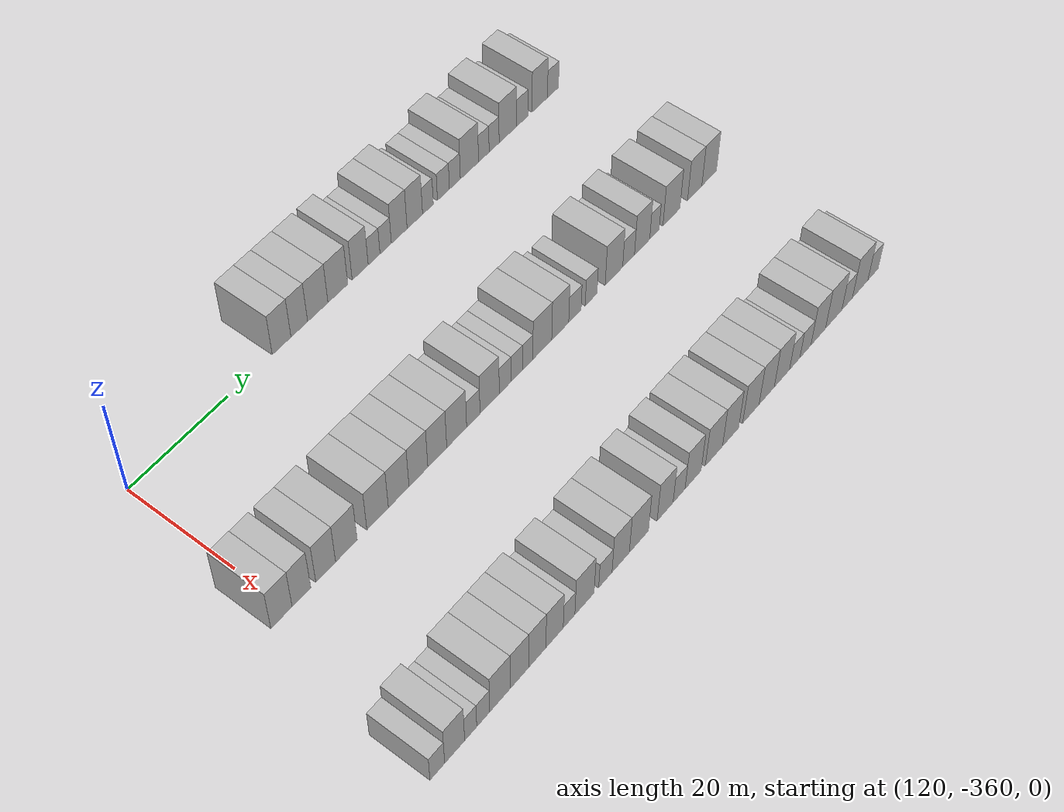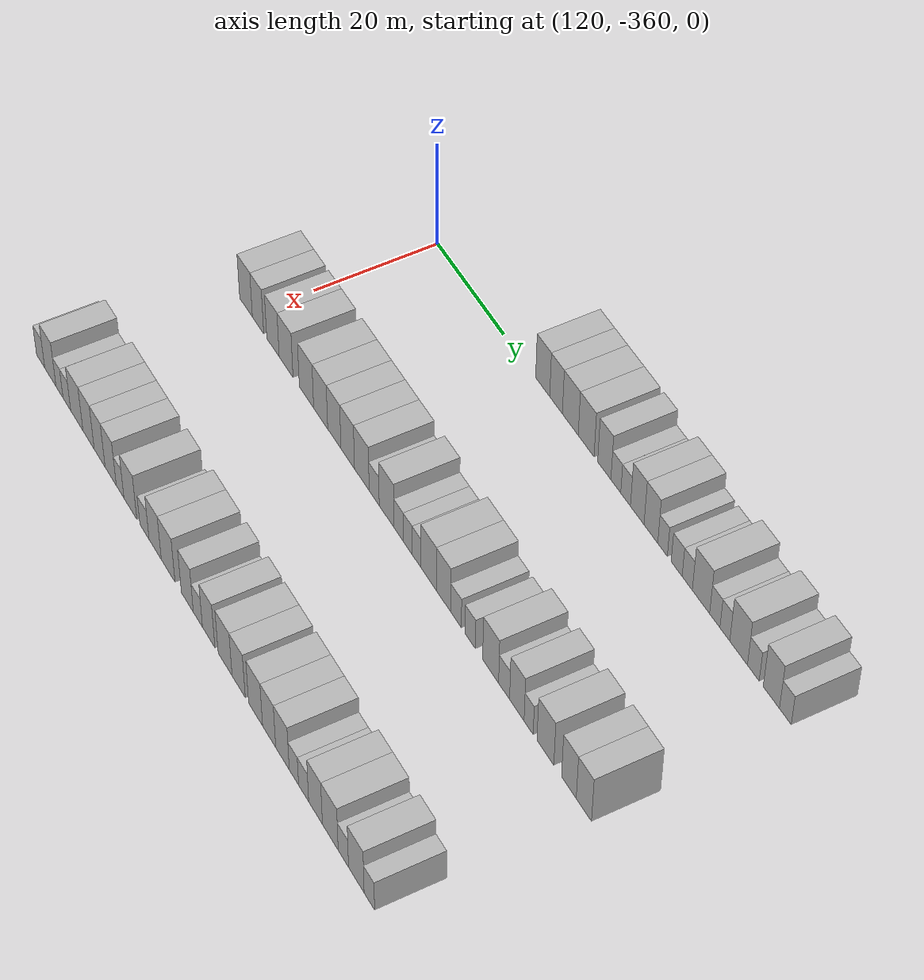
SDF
<sdf version="1.6">
 <world name="default">
  <model name="building_725">
   <static>1</static>
   <pose>115.0000 -328.7063 0 0.000000 0.000000 0.000000</pose>
   <link name="link">
    <pose>0 0 4.50 0 0 0</pose>
    <collision name="collision"><geometry><box><size>10.0000 4.0175 9.0000</size></box></geometry></collision>
    <visual name="visual">
     <cast_shadows>0</cast_shadows>
     <geometry><box><size>10.0000 4.0175 9.0000</size></box></geometry>
     <material>
      <script>
       <uri>model://HANNAS_wall/materials/scripts</uri>
       <uri>model://HANNAS_wall/materials/textures</uri>
       <name>vrc/HANNAS_wall</name>
      </script>
     </material>
    </visual>
   </link>
  </model>
  <model name="building_726">
   <static>1</static>
   <pose>115.0000 -324.8950 0 0.000000 0.000000 0.000000</pose>
   <link name="link">
    <pose>0 0 4.50 0 0 0</pose>
    <collision name="collision"><geometry><box><size>10.0000 3.6051 9.0000</size></box></geometry></collision>
    <visual name="visual">
     <cast_shadows>0</cast_shadows>
     <geometry><box><size>10.0000 3.6051 9.0000</size></box></geometry>
     <material>
      <script>
       <uri>model://HANNAS_wall/materials/scripts</uri>
       <uri>model://HANNAS_wall/materials/textures</uri>
       <name>vrc/HANNAS_wall</name>
      </script>
     </material>
    </visual>
   </link>
  </model>
  <model name="building_727">
   <static>1</static>
   <pose>115.0000 -320.8562 0 0.000000 0.000000 0.000000</pose>
   <link name="link">
    <pose>0 0 4.50 0 0 0</pose>
    <collision name="collision"><geometry><box><size>10.0000 4.4725 9.0000</size></box></geometry></collision>
    <visual name="visual">
     <cast_shadows>0</cast_shadows>
     <geometry><box><size>10.0000 4.4725 9.0000</size></box></geometry>
     <material>
      <script>
       <uri>model://HANNAS_wall/materials/scripts</uri>
       <uri>model://HANNAS_wall/materials/textures</uri>
       <name>vrc/HANNAS_wall</name>
      </script>
     </material>
    </visual>
   </link>
  </model>
  <model name="building_728">
   <static>1</static>
   <pose>115.0000 -316.4179 0 0.000000 0.000000 0.000000</pose>
   <link name="link">
    <pose>0 0 4.50 0 0 0</pose>
    <collision name="collision"><geometry><box><size>10.0000 4.4040 9.0000</size></box></geometry></collision>
    <visual name="visual">
     <cast_shadows>0</cast_shadows>
     <geometry><box><size>10.0000 4.4040 9.0000</size></box></geometry>
     <material>
      <script>
       <uri>model://HANNAS_wall/materials/scripts</uri>
       <uri>model://HANNAS_wall/materials/textures</uri>
       <name>vrc/HANNAS_wall</name>
      </script>
     </material>
    </visual>
   </link>
  </model>
  <model name="building_729">
   <static>1</static>
   <pose>115.0000 -311.4003 0 0.000000 0.000000 0.000000</pose>
   <link name="link">
    <pose>0 0 4.50 0 0 0</pose>
    <collision name="collision"><geometry><box><size>10.0000 3.6313 9.0000</size></box></geometry></collision>
    <visual name="visual">
     <cast_shadows>0</cast_shadows>
     <geometry><box><size>10.0000 3.6313 9.0000</size></box></geometry>
     <material>
      <script>
       <uri>model://HANNAS_wall/materials/scripts</uri>
       <uri>model://HANNAS_wall/materials/textures</uri>
       <name>vrc/HANNAS_wall</name>
      </script>
     </material>
    </visual>
   </link>
  </model>
  <model name="building_730">
   <static>1</static>
   <pose>115.0000 -308.2363 0 0.000000 0.000000 0.000000</pose>
   <link name="link">
    <pose>0 0 3.00 0 0 0</pose>
    <collision name="collision"><geometry><box><size>10.0000 2.6966 6.0000</size></box></geometry></collision>
    <visual name="visual">
     <cast_shadows>0</cast_shadows>
     <geometry><box><size>10.0000 2.6966 6.0000</size></box></geometry>
     <material>
      <script>
       <uri>model://HANNAS_wall/materials/scripts</uri>
       <uri>model://HANNAS_wall/materials/textures</uri>
       <name>vrc/HANNAS_wall</name>
      </script>
     </material>
    </visual>
   </link>
  </model>
  <model name="building_731">
   <static>1</static>
   <pose>115.0000 -305.5805 0 0.000000 0.000000 0.000000</pose>
   <link name="link">
    <pose>0 0 3.00 0 0 0</pose>
    <collision name="collision"><geometry><box><size>10.0000 2.6149 6.0000</size></box></geometry></collision>
    <visual name="visual">
     <cast_shadows>0</cast_shadows>
     <geometry><box><size>10.0000 2.6149 6.0000</size></box></geometry>
     <material>
      <script>
       <uri>model://HANNAS_wall/materials/scripts</uri>
       <uri>model://HANNAS_wall/materials/textures</uri>
       <name>vrc/HANNAS_wall</name>
      </script>
     </material>
    </visual>
   </link>
  </model>
  <model name="building_732">
   <static>1</static>
   <pose>115.0000 -302.4448 0 0.000000 0.000000 0.000000</pose>
   <link name="link">
    <pose>0 0 4.50 0 0 0</pose>
    <collision name="collision"><geometry><box><size>10.0000 3.6565 9.0000</size></box></geometry></collision>
    <visual name="visual">
     <cast_shadows>0</cast_shadows>
     <geometry><box><size>10.0000 3.6565 9.0000</size></box></geometry>
     <material>
      <script>
       <uri>model://HANNAS_wall/materials/scripts</uri>
       <uri>model://HANNAS_wall/materials/textures</uri>
       <name>vrc/HANNAS_wall</name>
      </script>
     </material>
    </visual>
   </link>
  </model>
  <model name="building_733">
   <static>1</static>
   <pose>115.0000 -298.7928 0 0.000000 0.000000 0.000000</pose>
   <link name="link">
    <pose>0 0 4.50 0 0 0</pose>
    <collision name="collision"><geometry><box><size>10.0000 3.6475 9.0000</size></box></geometry></collision>
    <visual name="visual">
     <cast_shadows>0</cast_shadows>
     <geometry><box><size>10.0000 3.6475 9.0000</size></box></geometry>
     <material>
      <script>
       <uri>model://HANNAS_wall/materials/scripts</uri>
       <uri>model://HANNAS_wall/materials/textures</uri>
       <name>vrc/HANNAS_wall</name>
      </script>
     </material>
    </visual>
   </link>
  </model>
  <model name="building_734">
   <static>1</static>
   <pose>115.0000 -295.7008 0 0.000000 0.000000 0.000000</pose>
   <link name="link">
    <pose>0 0 3.00 0 0 0</pose>
    <collision name="collision"><geometry><box><size>10.0000 2.5364 6.0000</size></box></geometry></collision>
    <visual name="visual">
     <cast_shadows>0</cast_shadows>
     <geometry><box><size>10.0000 2.5364 6.0000</size></box></geometry>
     <material>
      <script>
       <uri>model://HANNAS_wall/materials/scripts</uri>
       <uri>model://HANNAS_wall/materials/textures</uri>
       <name>vrc/HANNAS_wall</name>
      </script>
     </material>
    </visual>
   </link>
  </model>
  <model name="building_735">
   <static>1</static>
   <pose>115.0000 -291.9942 0 0.000000 0.000000 0.000000</pose>
   <link name="link">
    <pose>0 0 3.00 0 0 0</pose>
    <collision name="collision"><geometry><box><size>10.0000 2.8768 6.0000</size></box></geometry></collision>
    <visual name="visual">
     <cast_shadows>0</cast_shadows>
     <geometry><box><size>10.0000 2.8768 6.0000</size></box></geometry>
     <material>
      <script>
       <uri>model://HANNAS_wall/materials/scripts</uri>
       <uri>model://HANNAS_wall/materials/textures</uri>
       <name>vrc/HANNAS_wall</name>
      </script>
     </material>
    </visual>
   </link>
  </model>
  <model name="building_736">
   <static>1</static>
   <pose>115.0000 -289.2337 0 0.000000 0.000000 0.000000</pose>
   <link name="link">
    <pose>0 0 3.00 0 0 0</pose>
    <collision name="collision"><geometry><box><size>10.0000 2.6441 6.0000</size></box></geometry></collision>
    <visual name="visual">
     <cast_shadows>0</cast_shadows>
     <geometry><box><size>10.0000 2.6441 6.0000</size></box></geometry>
     <material>
      <script>
       <uri>model://HANNAS_wall/materials/scripts</uri>
       <uri>model://HANNAS_wall/materials/textures</uri>
       <name>vrc/HANNAS_wall</name>
      </script>
     </material>
    </visual>
   </link>
  </model>
  <model name="building_737">
   <static>1</static>
   <pose>115.0000 -285.6870 0 0.000000 0.000000 0.000000</pose>
   <link name="link">
    <pose>0 0 4.50 0 0 0</pose>
    <collision name="collision"><geometry><box><size>10.0000 4.4492 9.0000</size></box></geometry></collision>
    <visual name="visual">
     <cast_shadows>0</cast_shadows>
     <geometry><box><size>10.0000 4.4492 9.0000</size></box></geometry>
     <material>
      <script>
       <uri>model://HANNAS_wall/materials/scripts</uri>
       <uri>model://HANNAS_wall/materials/textures</uri>
       <name>vrc/HANNAS_wall</name>
      </script>
     </material>
    </visual>
   </link>
  </model>
  <model name="building_738">
   <static>1</static>
   <pose>115.0000 -282.1508 0 0.000000 0.000000 0.000000</pose>
   <link name="link">
    <pose>0 0 3.00 0 0 0</pose>
    <collision name="collision"><geometry><box><size>10.0000 2.6233 6.0000</size></box></geometry></collision>
    <visual name="visual">
     <cast_shadows>0</cast_shadows>
     <geometry><box><size>10.0000 2.6233 6.0000</size></box></geometry>
     <material>
      <script>
       <uri>model://HANNAS_wall/materials/scripts</uri>
       <uri>model://HANNAS_wall/materials/textures</uri>
       <name>vrc/HANNAS_wall</name>
      </script>
     </material>
    </visual>
   </link>
  </model>
  <model name="building_739">
   <static>1</static>
   <pose>115.0000 -279.5904 0 0.000000 0.000000 0.000000</pose>
   <link name="link">
    <pose>0 0 3.00 0 0 0</pose>
    <collision name="collision"><geometry><box><size>10.0000 2.4975 6.0000</size></box></geometry></collision>
    <visual name="visual">
     <cast_shadows>0</cast_shadows>
     <geometry><box><size>10.0000 2.4975 6.0000</size></box></geometry>
     <material>
      <script>
       <uri>model://HANNAS_wall/materials/scripts</uri>
       <uri>model://HANNAS_wall/materials/textures</uri>
       <name>vrc/HANNAS_wall</name>
      </script>
     </material>
    </visual>
   </link>
  </model>
  <model name="building_740">
   <static>1</static>
   <pose>115.0000 -276.1248 0 0.000000 0.000000 0.000000</pose>
   <link name="link">
    <pose>0 0 4.50 0 0 0</pose>
    <collision name="collision"><geometry><box><size>10.0000 4.4336 9.0000</size></box></geometry></collision>
    <visual name="visual">
     <cast_shadows>0</cast_shadows>
     <geometry><box><size>10.0000 4.4336 9.0000</size></box></geometry>
     <material>
      <script>
       <uri>model://HANNAS_wall/materials/scripts</uri>
       <uri>model://HANNAS_wall/materials/textures</uri>
       <name>vrc/HANNAS_wall</name>
      </script>
     </material>
    </visual>
   </link>
  </model>
  <model name="building_741">
   <static>1</static>
   <pose>115.0000 -272.4535 0 0.000000 0.000000 0.000000</pose>
   <link name="link">
    <pose>0 0 3.00 0 0 0</pose>
    <collision name="collision"><geometry><box><size>10.0000 2.9090 6.0000</size></box></geometry></collision>
    <visual name="visual">
     <cast_shadows>0</cast_shadows>
     <geometry><box><size>10.0000 2.9090 6.0000</size></box></geometry>
     <material>
      <script>
       <uri>model://HANNAS_wall/materials/scripts</uri>
       <uri>model://HANNAS_wall/materials/textures</uri>
       <name>vrc/HANNAS_wall</name>
      </script>
     </material>
    </visual>
   </link>
  </model>
  <model name="building_742">
   <static>1</static>
   <pose>115.0000 -268.0079 0 0.000000 0.000000 0.000000</pose>
   <link name="link">
    <pose>0 0 4.50 0 0 0</pose>
    <collision name="collision"><geometry><box><size>10.0000 3.9823 9.0000</size></box></geometry></collision>
    <visual name="visual">
     <cast_shadows>0</cast_shadows>
     <geometry><box><size>10.0000 3.9823 9.0000</size></box></geometry>
     <material>
      <script>
       <uri>model://HANNAS_wall/materials/scripts</uri>
       <uri>model://HANNAS_wall/materials/textures</uri>
       <name>vrc/HANNAS_wall</name>
      </script>
     </material>
    </visual>
   </link>
  </model>
  <model name="building_743">
   <static>1</static>
   <pose>115.0000 -264.5839 0 0.000000 0.000000 0.000000</pose>
   <link name="link">
    <pose>0 0 3.00 0 0 0</pose>
    <collision name="collision"><geometry><box><size>10.0000 2.8658 6.0000</size></box></geometry></collision>
    <visual name="visual">
     <cast_shadows>0</cast_shadows>
     <geometry><box><size>10.0000 2.8658 6.0000</size></box></geometry>
     <material>
      <script>
       <uri>model://HANNAS_wall/materials/scripts</uri>
       <uri>model://HANNAS_wall/materials/textures</uri>
       <name>vrc/HANNAS_wall</name>
      </script>
     </material>
    </visual>
   </link>
  </model>
  <model name="building_946">
   <static>1</static>
   <pose>145.0000 -361.6654 0 0.000000 0.000000 0.000000</pose>
   <link name="link">
    <pose>0 0 4.50 0 0 0</pose>
    <collision name="collision"><geometry><box><size>10.0000 4.1437 9.0000</size></box></geometry></collision>
    <visual name="visual">
     <cast_shadows>0</cast_shadows>
     <geometry><box><size>10.0000 4.1437 9.0000</size></box></geometry>
     <material>
      <script>
       <uri>model://HANNAS_wall/materials/scripts</uri>
       <uri>model://HANNAS_wall/materials/textures</uri>
       <name>vrc/HANNAS_wall</name>
      </script>
     </material>
    </visual>
   </link>
  </model>
  <model name="building_947">
   <static>1</static>
   <pose>145.0000 -357.7541 0 0.000000 0.000000 0.000000</pose>
   <link name="link">
    <pose>0 0 4.50 0 0 0</pose>
    <collision name="collision"><geometry><box><size>10.0000 3.6789 9.0000</size></box></geometry></collision>
    <visual name="visual">
     <cast_shadows>0</cast_shadows>
     <geometry><box><size>10.0000 3.6789 9.0000</size></box></geometry>
     <material>
      <script>
       <uri>model://HANNAS_wall/materials/scripts</uri>
       <uri>model://HANNAS_wall/materials/textures</uri>
       <name>vrc/HANNAS_wall</name>
      </script>
     </material>
    </visual>
   </link>
  </model>
  <model name="building_948">
   <static>1</static>
   <pose>145.0000 -352.9235 0 0.000000 0.000000 0.000000</pose>
   <link name="link">
    <pose>0 0 4.50 0 0 0</pose>
    <collision name="collision"><geometry><box><size>10.0000 3.9823 9.0000</size></box></geometry></collision>
    <visual name="visual">
     <cast_shadows>0</cast_shadows>
     <geometry><box><size>10.0000 3.9823 9.0000</size></box></geometry>
     <material>
      <script>
       <uri>model://HANNAS_wall/materials/scripts</uri>
       <uri>model://HANNAS_wall/materials/textures</uri>
       <name>vrc/HANNAS_wall</name>
      </script>
     </material>
    </visual>
   </link>
  </model>
  <model name="building_949">
   <static>1</static>
   <pose>145.0000 -348.7363 0 0.000000 0.000000 0.000000</pose>
   <link name="link">
    <pose>0 0 4.50 0 0 0</pose>
    <collision name="collision"><geometry><box><size>10.0000 4.3921 9.0000</size></box></geometry></collision>
    <visual name="visual">
     <cast_shadows>0</cast_shadows>
     <geometry><box><size>10.0000 4.3921 9.0000</size></box></geometry>
     <material>
      <script>
       <uri>model://HANNAS_wall/materials/scripts</uri>
       <uri>model://HANNAS_wall/materials/textures</uri>
       <name>vrc/HANNAS_wall</name>
      </script>
     </material>
    </visual>
   </link>
  </model>
  <model name="building_950">
   <static>1</static>
   <pose>145.0000 -342.3020 0 0.000000 0.000000 0.000000</pose>
   <link name="link">
    <pose>0 0 4.50 0 0 0</pose>
    <collision name="collision"><geometry><box><size>10.0000 4.4766 9.0000</size></box></geometry></collision>
    <visual name="visual">
     <cast_shadows>0</cast_shadows>
     <geometry><box><size>10.0000 4.4766 9.0000</size></box></geometry>
     <material>
      <script>
       <uri>model://HANNAS_wall/materials/scripts</uri>
       <uri>model://HANNAS_wall/materials/textures</uri>
       <name>vrc/HANNAS_wall</name>
      </script>
     </material>
    </visual>
   </link>
  </model>
  <model name="building_951">
   <static>1</static>
   <pose>145.0000 -337.8887 0 0.000000 0.000000 0.000000</pose>
   <link name="link">
    <pose>0 0 4.50 0 0 0</pose>
    <collision name="collision"><geometry><box><size>10.0000 4.3500 9.0000</size></box></geometry></collision>
    <visual name="visual">
     <cast_shadows>0</cast_shadows>
     <geometry><box><size>10.0000 4.3500 9.0000</size></box></geometry>
     <material>
      <script>
       <uri>model://HANNAS_wall/materials/scripts</uri>
       <uri>model://HANNAS_wall/materials/textures</uri>
       <name>vrc/HANNAS_wall</name>
      </script>
     </material>
    </visual>
   </link>
  </model>
  <model name="building_952">
   <static>1</static>
   <pose>145.0000 -333.6887 0 0.000000 0.000000 0.000000</pose>
   <link name="link">
    <pose>0 0 4.50 0 0 0</pose>
    <collision name="collision"><geometry><box><size>10.0000 4.0500 9.0000</size></box></geometry></collision>
    <visual name="visual">
     <cast_shadows>0</cast_shadows>
     <geometry><box><size>10.0000 4.0500 9.0000</size></box></geometry>
     <material>
      <script>
       <uri>model://HANNAS_wall/materials/scripts</uri>
       <uri>model://HANNAS_wall/materials/textures</uri>
       <name>vrc/HANNAS_wall</name>
      </script>
     </material>
    </visual>
   </link>
  </model>
  <model name="building_953">
   <static>1</static>
   <pose>145.0000 -329.6108 0 0.000000 0.000000 0.000000</pose>
   <link name="link">
    <pose>0 0 4.50 0 0 0</pose>
    <collision name="collision"><geometry><box><size>10.0000 4.1058 9.0000</size></box></geometry></collision>
    <visual name="visual">
     <cast_shadows>0</cast_shadows>
     <geometry><box><size>10.0000 4.1058 9.0000</size></box></geometry>
     <material>
      <script>
       <uri>model://HANNAS_wall/materials/scripts</uri>
       <uri>model://HANNAS_wall/materials/textures</uri>
       <name>vrc/HANNAS_wall</name>
      </script>
     </material>
    </visual>
   </link>
  </model>
  <model name="building_954">
   <static>1</static>
   <pose>145.0000 -325.3653 0 0.000000 0.000000 0.000000</pose>
   <link name="link">
    <pose>0 0 4.50 0 0 0</pose>
    <collision name="collision"><geometry><box><size>10.0000 4.3852 9.0000</size></box></geometry></collision>
    <visual name="visual">
     <cast_shadows>0</cast_shadows>
     <geometry><box><size>10.0000 4.3852 9.0000</size></box></geometry>
     <material>
      <script>
       <uri>model://HANNAS_wall/materials/scripts</uri>
       <uri>model://HANNAS_wall/materials/textures</uri>
       <name>vrc/HANNAS_wall</name>
      </script>
     </material>
    </visual>
   </link>
  </model>
  <model name="building_955">
   <static>1</static>
   <pose>145.0000 -321.6806 0 0.000000 0.000000 0.000000</pose>
   <link name="link">
    <pose>0 0 3.00 0 0 0</pose>
    <collision name="collision"><geometry><box><size>10.0000 2.9842 6.0000</size></box></geometry></collision>
    <visual name="visual">
     <cast_shadows>0</cast_shadows>
     <geometry><box><size>10.0000 2.9842 6.0000</size></box></geometry>
     <material>
      <script>
       <uri>model://HANNAS_wall/materials/scripts</uri>
       <uri>model://HANNAS_wall/materials/textures</uri>
       <name>vrc/HANNAS_wall</name>
      </script>
     </material>
    </visual>
   </link>
  </model>
  <model name="building_956">
   <static>1</static>
   <pose>145.0000 -318.0157 0 0.000000 0.000000 0.000000</pose>
   <link name="link">
    <pose>0 0 4.50 0 0 0</pose>
    <collision name="collision"><geometry><box><size>10.0000 4.3455 9.0000</size></box></geometry></collision>
    <visual name="visual">
     <cast_shadows>0</cast_shadows>
     <geometry><box><size>10.0000 4.3455 9.0000</size></box></geometry>
     <material>
      <script>
       <uri>model://HANNAS_wall/materials/scripts</uri>
       <uri>model://HANNAS_wall/materials/textures</uri>
       <name>vrc/HANNAS_wall</name>
      </script>
     </material>
    </visual>
   </link>
  </model>
  <model name="building_957">
   <static>1</static>
   <pose>145.0000 -314.4713 0 0.000000 0.000000 0.000000</pose>
   <link name="link">
    <pose>0 0 3.00 0 0 0</pose>
    <collision name="collision"><geometry><box><size>10.0000 2.7435 6.0000</size></box></geometry></collision>
    <visual name="visual">
     <cast_shadows>0</cast_shadows>
     <geometry><box><size>10.0000 2.7435 6.0000</size></box></geometry>
     <material>
      <script>
       <uri>model://HANNAS_wall/materials/scripts</uri>
       <uri>model://HANNAS_wall/materials/textures</uri>
       <name>vrc/HANNAS_wall</name>
      </script>
     </material>
    </visual>
   </link>
  </model>
  <model name="building_958">
   <static>1</static>
   <pose>145.0000 -311.8171 0 0.000000 0.000000 0.000000</pose>
   <link name="link">
    <pose>0 0 3.00 0 0 0</pose>
    <collision name="collision"><geometry><box><size>10.0000 2.5649 6.0000</size></box></geometry></collision>
    <visual name="visual">
     <cast_shadows>0</cast_shadows>
     <geometry><box><size>10.0000 2.5649 6.0000</size></box></geometry>
     <material>
      <script>
       <uri>model://HANNAS_wall/materials/scripts</uri>
       <uri>model://HANNAS_wall/materials/textures</uri>
       <name>vrc/HANNAS_wall</name>
      </script>
     </material>
    </visual>
   </link>
  </model>
  <model name="building_959">
   <static>1</static>
   <pose>145.0000 -309.3195 0 0.000000 0.000000 0.000000</pose>
   <link name="link">
    <pose>0 0 3.00 0 0 0</pose>
    <collision name="collision"><geometry><box><size>10.0000 2.4303 6.0000</size></box></geometry></collision>
    <visual name="visual">
     <cast_shadows>0</cast_shadows>
     <geometry><box><size>10.0000 2.4303 6.0000</size></box></geometry>
     <material>
      <script>
       <uri>model://HANNAS_wall/materials/scripts</uri>
       <uri>model://HANNAS_wall/materials/textures</uri>
       <name>vrc/HANNAS_wall</name>
      </script>
     </material>
    </visual>
   </link>
  </model>
  <model name="building_960">
   <static>1</static>
   <pose>145.0000 -305.8877 0 0.000000 0.000000 0.000000</pose>
   <link name="link">
    <pose>0 0 4.50 0 0 0</pose>
    <collision name="collision"><geometry><box><size>10.0000 4.4333 9.0000</size></box></geometry></collision>
    <visual name="visual">
     <cast_shadows>0</cast_shadows>
     <geometry><box><size>10.0000 4.4333 9.0000</size></box></geometry>
     <material>
      <script>
       <uri>model://HANNAS_wall/materials/scripts</uri>
       <uri>model://HANNAS_wall/materials/textures</uri>
       <name>vrc/HANNAS_wall</name>
      </script>
     </material>
    </visual>
   </link>
  </model>
  <model name="building_961">
   <static>1</static>
   <pose>145.0000 -301.6483 0 0.000000 0.000000 0.000000</pose>
   <link name="link">
    <pose>0 0 4.50 0 0 0</pose>
    <collision name="collision"><geometry><box><size>10.0000 4.0455 9.0000</size></box></geometry></collision>
    <visual name="visual">
     <cast_shadows>0</cast_shadows>
     <geometry><box><size>10.0000 4.0455 9.0000</size></box></geometry>
     <material>
      <script>
       <uri>model://HANNAS_wall/materials/scripts</uri>
       <uri>model://HANNAS_wall/materials/textures</uri>
       <name>vrc/HANNAS_wall</name>
      </script>
     </material>
    </visual>
   </link>
  </model>
  <model name="building_962">
   <static>1</static>
   <pose>145.0000 -298.1317 0 0.000000 0.000000 0.000000</pose>
   <link name="link">
    <pose>0 0 3.00 0 0 0</pose>
    <collision name="collision"><geometry><box><size>10.0000 2.9878 6.0000</size></box></geometry></collision>
    <visual name="visual">
     <cast_shadows>0</cast_shadows>
     <geometry><box><size>10.0000 2.9878 6.0000</size></box></geometry>
     <material>
      <script>
       <uri>model://HANNAS_wall/materials/scripts</uri>
       <uri>model://HANNAS_wall/materials/textures</uri>
       <name>vrc/HANNAS_wall</name>
      </script>
     </material>
    </visual>
   </link>
  </model>
  <model name="building_963">
   <static>1</static>
   <pose>145.0000 -294.1950 0 0.000000 0.000000 0.000000</pose>
   <link name="link">
    <pose>0 0 3.00 0 0 0</pose>
    <collision name="collision"><geometry><box><size>10.0000 2.8855 6.0000</size></box></geometry></collision>
    <visual name="visual">
     <cast_shadows>0</cast_shadows>
     <geometry><box><size>10.0000 2.8855 6.0000</size></box></geometry>
     <material>
      <script>
       <uri>model://HANNAS_wall/materials/scripts</uri>
       <uri>model://HANNAS_wall/materials/textures</uri>
       <name>vrc/HANNAS_wall</name>
      </script>
     </material>
    </visual>
   </link>
  </model>
  <model name="building_964">
   <static>1</static>
   <pose>145.0000 -288.5842 0 0.000000 0.000000 0.000000</pose>
   <link name="link">
    <pose>0 0 4.50 0 0 0</pose>
    <collision name="collision"><geometry><box><size>10.0000 4.3361 9.0000</size></box></geometry></collision>
    <visual name="visual">
     <cast_shadows>0</cast_shadows>
     <geometry><box><size>10.0000 4.3361 9.0000</size></box></geometry>
     <material>
      <script>
       <uri>model://HANNAS_wall/materials/scripts</uri>
       <uri>model://HANNAS_wall/materials/textures</uri>
       <name>vrc/HANNAS_wall</name>
      </script>
     </material>
    </visual>
   </link>
  </model>
  <model name="building_965">
   <static>1</static>
   <pose>145.0000 -284.9345 0 0.000000 0.000000 0.000000</pose>
   <link name="link">
    <pose>0 0 3.00 0 0 0</pose>
    <collision name="collision"><geometry><box><size>10.0000 2.9634 6.0000</size></box></geometry></collision>
    <visual name="visual">
     <cast_shadows>0</cast_shadows>
     <geometry><box><size>10.0000 2.9634 6.0000</size></box></geometry>
     <material>
      <script>
       <uri>model://HANNAS_wall/materials/scripts</uri>
       <uri>model://HANNAS_wall/materials/textures</uri>
       <name>vrc/HANNAS_wall</name>
      </script>
     </material>
    </visual>
   </link>
  </model>
  <model name="building_966">
   <static>1</static>
   <pose>145.0000 -281.5208 0 0.000000 0.000000 0.000000</pose>
   <link name="link">
    <pose>0 0 4.50 0 0 0</pose>
    <collision name="collision"><geometry><box><size>10.0000 3.8639 9.0000</size></box></geometry></collision>
    <visual name="visual">
     <cast_shadows>0</cast_shadows>
     <geometry><box><size>10.0000 3.8639 9.0000</size></box></geometry>
     <material>
      <script>
       <uri>model://HANNAS_wall/materials/scripts</uri>
       <uri>model://HANNAS_wall/materials/textures</uri>
       <name>vrc/HANNAS_wall</name>
      </script>
     </material>
    </visual>
   </link>
  </model>
  <model name="building_967">
   <static>1</static>
   <pose>145.0000 -278.3850 0 0.000000 0.000000 0.000000</pose>
   <link name="link">
    <pose>0 0 3.00 0 0 0</pose>
    <collision name="collision"><geometry><box><size>10.0000 2.4078 6.0000</size></box></geometry></collision>
    <visual name="visual">
     <cast_shadows>0</cast_shadows>
     <geometry><box><size>10.0000 2.4078 6.0000</size></box></geometry>
     <material>
      <script>
       <uri>model://HANNAS_wall/materials/scripts</uri>
       <uri>model://HANNAS_wall/materials/textures</uri>
       <name>vrc/HANNAS_wall</name>
      </script>
     </material>
    </visual>
   </link>
  </model>
  <model name="building_968">
   <static>1</static>
   <pose>145.0000 -273.9763 0 0.000000 0.000000 0.000000</pose>
   <link name="link">
    <pose>0 0 4.50 0 0 0</pose>
    <collision name="collision"><geometry><box><size>10.0000 4.4096 9.0000</size></box></geometry></collision>
    <visual name="visual">
     <cast_shadows>0</cast_shadows>
     <geometry><box><size>10.0000 4.4096 9.0000</size></box></geometry>
     <material>
      <script>
       <uri>model://HANNAS_wall/materials/scripts</uri>
       <uri>model://HANNAS_wall/materials/textures</uri>
       <name>vrc/HANNAS_wall</name>
      </script>
     </material>
    </visual>
   </link>
  </model>
  <model name="building_969">
   <static>1</static>
   <pose>145.0000 -267.8788 0 0.000000 0.000000 0.000000</pose>
   <link name="link">
    <pose>0 0 4.50 0 0 0</pose>
    <collision name="collision"><geometry><box><size>10.0000 3.7853 9.0000</size></box></geometry></collision>
    <visual name="visual">
     <cast_shadows>0</cast_shadows>
     <geometry><box><size>10.0000 3.7853 9.0000</size></box></geometry>
     <material>
      <script>
       <uri>model://HANNAS_wall/materials/scripts</uri>
       <uri>model://HANNAS_wall/materials/textures</uri>
       <name>vrc/HANNAS_wall</name>
      </script>
     </material>
    </visual>
   </link>
  </model>
  <model name="building_970">
   <static>1</static>
   <pose>145.0000 -264.0398 0 0.000000 0.000000 0.000000</pose>
   <link name="link">
    <pose>0 0 4.50 0 0 0</pose>
    <collision name="collision"><geometry><box><size>10.0000 3.8927 9.0000</size></box></geometry></collision>
    <visual name="visual">
     <cast_shadows>0</cast_shadows>
     <geometry><box><size>10.0000 3.8927 9.0000</size></box></geometry>
     <material>
      <script>
       <uri>model://HANNAS_wall/materials/scripts</uri>
       <uri>model://HANNAS_wall/materials/textures</uri>
       <name>vrc/HANNAS_wall</name>
      </script>
     </material>
    </visual>
   </link>
  </model>
  <model name="building_1172">
   <static>1</static>
   <pose>175.0000 -365.7607 0 0.000000 0.000000 0.000000</pose>
   <link name="link">
    <pose>0 0 3.00 0 0 0</pose>
    <collision name="collision"><geometry><box><size>10.0000 2.8787 6.0000</size></box></geometry></collision>
    <visual name="visual">
     <cast_shadows>0</cast_shadows>
     <geometry><box><size>10.0000 2.8787 6.0000</size></box></geometry>
     <material>
      <script>
       <uri>model://HANNAS_wall/materials/scripts</uri>
       <uri>model://HANNAS_wall/materials/textures</uri>
       <name>vrc/HANNAS_wall</name>
      </script>
     </material>
    </visual>
   </link>
  </model>
  <model name="building_1173">
   <static>1</static>
   <pose>175.0000 -362.3484 0 0.000000 0.000000 0.000000</pose>
   <link name="link">
    <pose>0 0 4.50 0 0 0</pose>
    <collision name="collision"><geometry><box><size>10.0000 3.9460 9.0000</size></box></geometry></collision>
    <visual name="visual">
     <cast_shadows>0</cast_shadows>
     <geometry><box><size>10.0000 3.9460 9.0000</size></box></geometry>
     <material>
      <script>
       <uri>model://HANNAS_wall/materials/scripts</uri>
       <uri>model://HANNAS_wall/materials/textures</uri>
       <name>vrc/HANNAS_wall</name>
      </script>
     </material>
    </visual>
   </link>
  </model>
  <model name="building_1174">
   <static>1</static>
   <pose>175.0000 -359.1597 0 0.000000 0.000000 0.000000</pose>
   <link name="link">
    <pose>0 0 3.00 0 0 0</pose>
    <collision name="collision"><geometry><box><size>10.0000 2.4314 6.0000</size></box></geometry></collision>
    <visual name="visual">
     <cast_shadows>0</cast_shadows>
     <geometry><box><size>10.0000 2.4314 6.0000</size></box></geometry>
     <material>
      <script>
       <uri>model://HANNAS_wall/materials/scripts</uri>
       <uri>model://HANNAS_wall/materials/textures</uri>
       <name>vrc/HANNAS_wall</name>
      </script>
     </material>
    </visual>
   </link>
  </model>
  <model name="building_1175">
   <static>1</static>
   <pose>175.0000 -356.6291 0 0.000000 0.000000 0.000000</pose>
   <link name="link">
    <pose>0 0 3.00 0 0 0</pose>
    <collision name="collision"><geometry><box><size>10.0000 2.6298 6.0000</size></box></geometry></collision>
    <visual name="visual">
     <cast_shadows>0</cast_shadows>
     <geometry><box><size>10.0000 2.6298 6.0000</size></box></geometry>
     <material>
      <script>
       <uri>model://HANNAS_wall/materials/scripts</uri>
       <uri>model://HANNAS_wall/materials/textures</uri>
       <name>vrc/HANNAS_wall</name>
      </script>
     </material>
    </visual>
   </link>
  </model>
  <model name="building_1176">
   <static>1</static>
   <pose>175.0000 -353.2187 0 0.000000 0.000000 0.000000</pose>
   <link name="link">
    <pose>0 0 4.50 0 0 0</pose>
    <collision name="collision"><geometry><box><size>10.0000 4.1910 9.0000</size></box></geometry></collision>
    <visual name="visual">
     <cast_shadows>0</cast_shadows>
     <geometry><box><size>10.0000 4.1910 9.0000</size></box></geometry>
     <material>
      <script>
       <uri>model://HANNAS_wall/materials/scripts</uri>
       <uri>model://HANNAS_wall/materials/textures</uri>
       <name>vrc/HANNAS_wall</name>
      </script>
     </material>
    </visual>
   </link>
  </model>
  <model name="building_1177">
   <static>1</static>
   <pose>175.0000 -349.2179 0 0.000000 0.000000 0.000000</pose>
   <link name="link">
    <pose>0 0 4.50 0 0 0</pose>
    <collision name="collision"><geometry><box><size>10.0000 3.8104 9.0000</size></box></geometry></collision>
    <visual name="visual">
     <cast_shadows>0</cast_shadows>
     <geometry><box><size>10.0000 3.8104 9.0000</size></box></geometry>
     <material>
      <script>
       <uri>model://HANNAS_wall/materials/scripts</uri>
       <uri>model://HANNAS_wall/materials/textures</uri>
       <name>vrc/HANNAS_wall</name>
      </script>
     </material>
    </visual>
   </link>
  </model>
  <model name="building_1178">
   <static>1</static>
   <pose>175.0000 -345.4955 0 0.000000 0.000000 0.000000</pose>
   <link name="link">
    <pose>0 0 4.50 0 0 0</pose>
    <collision name="collision"><geometry><box><size>10.0000 3.6345 9.0000</size></box></geometry></collision>
    <visual name="visual">
     <cast_shadows>0</cast_shadows>
     <geometry><box><size>10.0000 3.6345 9.0000</size></box></geometry>
     <material>
      <script>
       <uri>model://HANNAS_wall/materials/scripts</uri>
       <uri>model://HANNAS_wall/materials/textures</uri>
       <name>vrc/HANNAS_wall</name>
      </script>
     </material>
    </visual>
   </link>
  </model>
  <model name="building_1179">
   <static>1</static>
   <pose>175.0000 -341.8234 0 0.000000 0.000000 0.000000</pose>
   <link name="link">
    <pose>0 0 4.50 0 0 0</pose>
    <collision name="collision"><geometry><box><size>10.0000 3.7095 9.0000</size></box></geometry></collision>
    <visual name="visual">
     <cast_shadows>0</cast_shadows>
     <geometry><box><size>10.0000 3.7095 9.0000</size></box></geometry>
     <material>
      <script>
       <uri>model://HANNAS_wall/materials/scripts</uri>
       <uri>model://HANNAS_wall/materials/textures</uri>
       <name>vrc/HANNAS_wall</name>
      </script>
     </material>
    </visual>
   </link>
  </model>
  <model name="building_1180">
   <static>1</static>
   <pose>175.0000 -338.7082 0 0.000000 0.000000 0.000000</pose>
   <link name="link">
    <pose>0 0 3.00 0 0 0</pose>
    <collision name="collision"><geometry><box><size>10.0000 2.5210 6.0000</size></box></geometry></collision>
    <visual name="visual">
     <cast_shadows>0</cast_shadows>
     <geometry><box><size>10.0000 2.5210 6.0000</size></box></geometry>
     <material>
      <script>
       <uri>model://HANNAS_wall/materials/scripts</uri>
       <uri>model://HANNAS_wall/materials/textures</uri>
       <name>vrc/HANNAS_wall</name>
      </script>
     </material>
    </visual>
   </link>
  </model>
  <model name="building_1181">
   <static>1</static>
   <pose>175.0000 -335.3465 0 0.000000 0.000000 0.000000</pose>
   <link name="link">
    <pose>0 0 4.50 0 0 0</pose>
    <collision name="collision"><geometry><box><size>10.0000 4.2023 9.0000</size></box></geometry></collision>
    <visual name="visual">
     <cast_shadows>0</cast_shadows>
     <geometry><box><size>10.0000 4.2023 9.0000</size></box></geometry>
     <material>
      <script>
       <uri>model://HANNAS_wall/materials/scripts</uri>
       <uri>model://HANNAS_wall/materials/textures</uri>
       <name>vrc/HANNAS_wall</name>
      </script>
     </material>
    </visual>
   </link>
  </model>
  <model name="building_1182">
   <static>1</static>
   <pose>175.0000 -330.7644 0 0.000000 0.000000 0.000000</pose>
   <link name="link">
    <pose>0 0 3.00 0 0 0</pose>
    <collision name="collision"><geometry><box><size>10.0000 2.9618 6.0000</size></box></geometry></collision>
    <visual name="visual">
     <cast_shadows>0</cast_shadows>
     <geometry><box><size>10.0000 2.9618 6.0000</size></box></geometry>
     <material>
      <script>
       <uri>model://HANNAS_wall/materials/scripts</uri>
       <uri>model://HANNAS_wall/materials/textures</uri>
       <name>vrc/HANNAS_wall</name>
      </script>
     </material>
    </visual>
   </link>
  </model>
  <model name="building_1183">
   <static>1</static>
   <pose>175.0000 -327.3392 0 0.000000 0.000000 0.000000</pose>
   <link name="link">
    <pose>0 0 4.50 0 0 0</pose>
    <collision name="collision"><geometry><box><size>10.0000 3.8886 9.0000</size></box></geometry></collision>
    <visual name="visual">
     <cast_shadows>0</cast_shadows>
     <geometry><box><size>10.0000 3.8886 9.0000</size></box></geometry>
     <material>
      <script>
       <uri>model://HANNAS_wall/materials/scripts</uri>
       <uri>model://HANNAS_wall/materials/textures</uri>
       <name>vrc/HANNAS_wall</name>
      </script>
     </material>
    </visual>
   </link>
  </model>
  <model name="building_1184">
   <static>1</static>
   <pose>175.0000 -323.2206 0 0.000000 0.000000 0.000000</pose>
   <link name="link">
    <pose>0 0 4.50 0 0 0</pose>
    <collision name="collision"><geometry><box><size>10.0000 4.3486 9.0000</size></box></geometry></collision>
    <visual name="visual">
     <cast_shadows>0</cast_shadows>
     <geometry><box><size>10.0000 4.3486 9.0000</size></box></geometry>
     <material>
      <script>
       <uri>model://HANNAS_wall/materials/scripts</uri>
       <uri>model://HANNAS_wall/materials/textures</uri>
       <name>vrc/HANNAS_wall</name>
      </script>
     </material>
    </visual>
   </link>
  </model>
  <model name="building_1185">
   <static>1</static>
   <pose>175.0000 -317.1900 0 0.000000 0.000000 0.000000</pose>
   <link name="link">
    <pose>0 0 4.50 0 0 0</pose>
    <collision name="collision"><geometry><box><size>10.0000 3.7127 9.0000</size></box></geometry></collision>
    <visual name="visual">
     <cast_shadows>0</cast_shadows>
     <geometry><box><size>10.0000 3.7127 9.0000</size></box></geometry>
     <material>
      <script>
       <uri>model://HANNAS_wall/materials/scripts</uri>
       <uri>model://HANNAS_wall/materials/textures</uri>
       <name>vrc/HANNAS_wall</name>
      </script>
     </material>
    </visual>
   </link>
  </model>
  <model name="building_1186">
   <static>1</static>
   <pose>175.0000 -313.9286 0 0.000000 0.000000 0.000000</pose>
   <link name="link">
    <pose>0 0 3.00 0 0 0</pose>
    <collision name="collision"><geometry><box><size>10.0000 2.8101 6.0000</size></box></geometry></collision>
    <visual name="visual">
     <cast_shadows>0</cast_shadows>
     <geometry><box><size>10.0000 2.8101 6.0000</size></box></geometry>
     <material>
      <script>
       <uri>model://HANNAS_wall/materials/scripts</uri>
       <uri>model://HANNAS_wall/materials/textures</uri>
       <name>vrc/HANNAS_wall</name>
      </script>
     </material>
    </visual>
   </link>
  </model>
  <model name="building_1187">
   <static>1</static>
   <pose>175.0000 -310.6173 0 0.000000 0.000000 0.000000</pose>
   <link name="link">
    <pose>0 0 4.50 0 0 0</pose>
    <collision name="collision"><geometry><box><size>10.0000 3.8126 9.0000</size></box></geometry></collision>
    <visual name="visual">
     <cast_shadows>0</cast_shadows>
     <geometry><box><size>10.0000 3.8126 9.0000</size></box></geometry>
     <material>
      <script>
       <uri>model://HANNAS_wall/materials/scripts</uri>
       <uri>model://HANNAS_wall/materials/textures</uri>
       <name>vrc/HANNAS_wall</name>
      </script>
     </material>
    </visual>
   </link>
  </model>
  <model name="building_1188">
   <static>1</static>
   <pose>175.0000 -305.6192 0 0.000000 0.000000 0.000000</pose>
   <link name="link">
    <pose>0 0 4.50 0 0 0</pose>
    <collision name="collision"><geometry><box><size>10.0000 4.1835 9.0000</size></box></geometry></collision>
    <visual name="visual">
     <cast_shadows>0</cast_shadows>
     <geometry><box><size>10.0000 4.1835 9.0000</size></box></geometry>
     <material>
      <script>
       <uri>model://HANNAS_wall/materials/scripts</uri>
       <uri>model://HANNAS_wall/materials/textures</uri>
       <name>vrc/HANNAS_wall</name>
      </script>
     </material>
    </visual>
   </link>
  </model>
  <model name="building_1189">
   <static>1</static>
   <pose>175.0000 -301.5579 0 0.000000 0.000000 0.000000</pose>
   <link name="link">
    <pose>0 0 4.50 0 0 0</pose>
    <collision name="collision"><geometry><box><size>10.0000 3.9391 9.0000</size></box></geometry></collision>
    <visual name="visual">
     <cast_shadows>0</cast_shadows>
     <geometry><box><size>10.0000 3.9391 9.0000</size></box></geometry>
     <material>
      <script>
       <uri>model://HANNAS_wall/materials/scripts</uri>
       <uri>model://HANNAS_wall/materials/textures</uri>
       <name>vrc/HANNAS_wall</name>
      </script>
     </material>
    </visual>
   </link>
  </model>
  <model name="building_1190">
   <static>1</static>
   <pose>175.0000 -296.5322 0 0.000000 0.000000 0.000000</pose>
   <link name="link">
    <pose>0 0 4.50 0 0 0</pose>
    <collision name="collision"><geometry><box><size>10.0000 4.1124 9.0000</size></box></geometry></collision>
    <visual name="visual">
     <cast_shadows>0</cast_shadows>
     <geometry><box><size>10.0000 4.1124 9.0000</size></box></geometry>
     <material>
      <script>
       <uri>model://HANNAS_wall/materials/scripts</uri>
       <uri>model://HANNAS_wall/materials/textures</uri>
       <name>vrc/HANNAS_wall</name>
      </script>
     </material>
    </visual>
   </link>
  </model>
  <model name="building_1191">
   <static>1</static>
   <pose>175.0000 -292.5618 0 0.000000 0.000000 0.000000</pose>
   <link name="link">
    <pose>0 0 4.50 0 0 0</pose>
    <collision name="collision"><geometry><box><size>10.0000 3.8285 9.0000</size></box></geometry></collision>
    <visual name="visual">
     <cast_shadows>0</cast_shadows>
     <geometry><box><size>10.0000 3.8285 9.0000</size></box></geometry>
     <material>
      <script>
       <uri>model://HANNAS_wall/materials/scripts</uri>
       <uri>model://HANNAS_wall/materials/textures</uri>
       <name>vrc/HANNAS_wall</name>
      </script>
     </material>
    </visual>
   </link>
  </model>
  <model name="building_1192">
   <static>1</static>
   <pose>175.0000 -288.6983 0 0.000000 0.000000 0.000000</pose>
   <link name="link">
    <pose>0 0 4.50 0 0 0</pose>
    <collision name="collision"><geometry><box><size>10.0000 3.8985 9.0000</size></box></geometry></collision>
    <visual name="visual">
     <cast_shadows>0</cast_shadows>
     <geometry><box><size>10.0000 3.8985 9.0000</size></box></geometry>
     <material>
      <script>
       <uri>model://HANNAS_wall/materials/scripts</uri>
       <uri>model://HANNAS_wall/materials/textures</uri>
       <name>vrc/HANNAS_wall</name>
      </script>
     </material>
    </visual>
   </link>
  </model>
  <model name="building_1193">
   <static>1</static>
   <pose>175.0000 -285.4123 0 0.000000 0.000000 0.000000</pose>
   <link name="link">
    <pose>0 0 3.00 0 0 0</pose>
    <collision name="collision"><geometry><box><size>10.0000 2.6735 6.0000</size></box></geometry></collision>
    <visual name="visual">
     <cast_shadows>0</cast_shadows>
     <geometry><box><size>10.0000 2.6735 6.0000</size></box></geometry>
     <material>
      <script>
       <uri>model://HANNAS_wall/materials/scripts</uri>
       <uri>model://HANNAS_wall/materials/textures</uri>
       <name>vrc/HANNAS_wall</name>
      </script>
     </material>
    </visual>
   </link>
  </model>
  <model name="building_1194">
   <static>1</static>
   <pose>175.0000 -282.6493 0 0.000000 0.000000 0.000000</pose>
   <link name="link">
    <pose>0 0 3.00 0 0 0</pose>
    <collision name="collision"><geometry><box><size>10.0000 2.8526 6.0000</size></box></geometry></collision>
    <visual name="visual">
     <cast_shadows>0</cast_shadows>
     <geometry><box><size>10.0000 2.8526 6.0000</size></box></geometry>
     <material>
      <script>
       <uri>model://HANNAS_wall/materials/scripts</uri>
       <uri>model://HANNAS_wall/materials/textures</uri>
       <name>vrc/HANNAS_wall</name>
      </script>
     </material>
    </visual>
   </link>
  </model>
  <model name="building_1195">
   <static>1</static>
   <pose>175.0000 -279.2920 0 0.000000 0.000000 0.000000</pose>
   <link name="link">
    <pose>0 0 4.50 0 0 0</pose>
    <collision name="collision"><geometry><box><size>10.0000 3.8621 9.0000</size></box></geometry></collision>
    <visual name="visual">
     <cast_shadows>0</cast_shadows>
     <geometry><box><size>10.0000 3.8621 9.0000</size></box></geometry>
     <material>
      <script>
       <uri>model://HANNAS_wall/materials/scripts</uri>
       <uri>model://HANNAS_wall/materials/textures</uri>
       <name>vrc/HANNAS_wall</name>
      </script>
     </material>
    </visual>
   </link>
  </model>
  <model name="building_1196">
   <static>1</static>
   <pose>175.0000 -275.1730 0 0.000000 0.000000 0.000000</pose>
   <link name="link">
    <pose>0 0 4.50 0 0 0</pose>
    <collision name="collision"><geometry><box><size>10.0000 4.3759 9.0000</size></box></geometry></collision>
    <visual name="visual">
     <cast_shadows>0</cast_shadows>
     <geometry><box><size>10.0000 4.3759 9.0000</size></box></geometry>
     <material>
      <script>
       <uri>model://HANNAS_wall/materials/scripts</uri>
       <uri>model://HANNAS_wall/materials/textures</uri>
       <name>vrc/HANNAS_wall</name>
      </script>
     </material>
    </visual>
   </link>
  </model>
  <model name="building_1197">
   <static>1</static>
   <pose>175.0000 -271.5603 0 0.000000 0.000000 0.000000</pose>
   <link name="link">
    <pose>0 0 3.00 0 0 0</pose>
    <collision name="collision"><geometry><box><size>10.0000 2.8496 6.0000</size></box></geometry></collision>
    <visual name="visual">
     <cast_shadows>0</cast_shadows>
     <geometry><box><size>10.0000 2.8496 6.0000</size></box></geometry>
     <material>
      <script>
       <uri>model://HANNAS_wall/materials/scripts</uri>
       <uri>model://HANNAS_wall/materials/textures</uri>
       <name>vrc/HANNAS_wall</name>
      </script>
     </material>
    </visual>
   </link>
  </model>
  <model name="building_1198">
   <static>1</static>
   <pose>175.0000 -268.0191 0 0.000000 0.000000 0.000000</pose>
   <link name="link">
    <pose>0 0 4.50 0 0 0</pose>
    <collision name="collision"><geometry><box><size>10.0000 4.2328 9.0000</size></box></geometry></collision>
    <visual name="visual">
     <cast_shadows>0</cast_shadows>
     <geometry><box><size>10.0000 4.2328 9.0000</size></box></geometry>
     <material>
      <script>
       <uri>model://HANNAS_wall/materials/scripts</uri>
       <uri>model://HANNAS_wall/materials/textures</uri>
       <name>vrc/HANNAS_wall</name>
      </script>
     </material>
    </visual>
   </link>
  </model>
  <model name="building_1199">
   <static>1</static>
   <pose>175.0000 -264.4904 0 0.000000 0.000000 0.000000</pose>
   <link name="link">
    <pose>0 0 3.00 0 0 0</pose>
    <collision name="collision"><geometry><box><size>10.0000 2.8245 6.0000</size></box></geometry></collision>
    <visual name="visual">
     <cast_shadows>0</cast_shadows>
     <geometry><box><size>10.0000 2.8245 6.0000</size></box></geometry>
     <material>
      <script>
       <uri>model://HANNAS_wall/materials/scripts</uri>
       <uri>model://HANNAS_wall/materials/textures</uri>
       <name>vrc/HANNAS_wall</name>
      </script>
     </material>
    </visual>
   </link>
  </model>
 </world>
</sdf>
